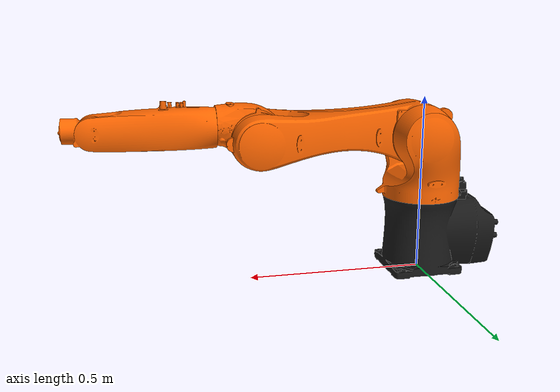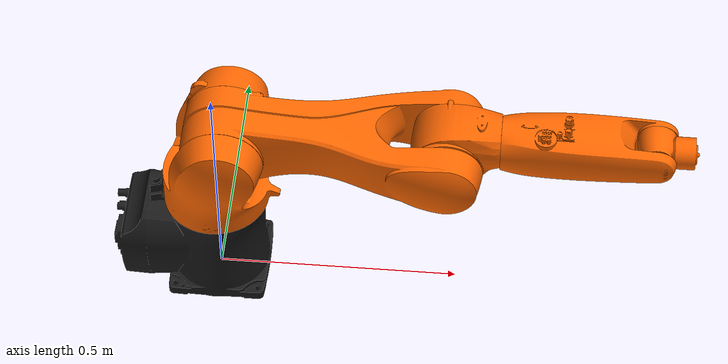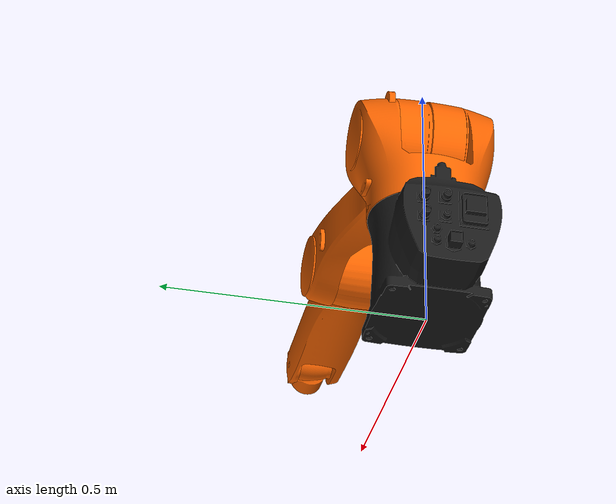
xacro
<?xml version="1.0" ?>

<robot name="kuka_kr6_r900" xmlns:xacro="http://ros.org/wiki/xacro">
	<xacro:include filename="$(find kuka_kr6_r900_description)/urdf/kuka_kr6_r900.urdf.xacro" />

	<link name="world"/>

	<xacro:kuka_kr6_r900 prefix="" parent="world">
		<origin xyz="0 0 0" rpy="0 0 0" />
	</xacro:kuka_kr6_r900>
</robot>

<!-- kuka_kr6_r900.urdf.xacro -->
<robot xmlns:xacro="http://ros.org/wiki/xacro">

	<xacro:include filename="$(find kuka_kr6_r900_description)/urdf/kuka_kr6_r900.gazebo.xacro" />
	<xacro:include filename="$(find kuka_kr6_r900_description)/urdf/kuka_kr6_r900.transmission.xacro" />

	<xacro:macro name="kuka_kr6_r900" params="prefix parent *origin">

		<joint name="${prefix}base_joint" type="fixed">
			<parent link="${parent}"/>
			<child link="${prefix}base_link"/>
			<insert_block name="origin" />
		</joint>

		<!-- BASE LINK -->
		<link name="${prefix}base_link">
		    <inertial>
		        <mass value="1.2" />
		        <origin xyz="0.0 0.0 0.0" />
		        <inertia  ixx="1.0" ixy="0.0"  ixz="0.0"  iyy="1.0"  iyz="0.0"  izz="1.0" />
		    </inertial>

		    <visual>
		        <origin xyz="0.0 0.0 0.0" rpy="0.0 0.0 0.0" />
		        <geometry>
		            <mesh filename="package://kuka_kr6_r900_description/meshes/visual/link_0.stl" scale="1.0 1.0 1.0"/>
		        </geometry>
		        <material name="black">
		            <color rgba="0.1 0.1 0.1 1.0"/>
		        </material>
		    </visual>

		    <collision>
		        <origin xyz="0.0 0.0 0.0" rpy="0.0 0.0 0.0" />
		        <geometry>
		            <mesh filename="package://kuka_kr6_r900_description/meshes/collision/link_0.stl" scale="1.0 1.0 1.0"/>
		        </geometry>
		    </collision>
		</link>

		<!-- LINK 1 -->
		<link name="${prefix}link_1">
		    <inertial>
		        <mass value="1.2" />
		        <origin xyz="0.0 0.0 0.0" />
		        <inertia  ixx="1.0" ixy="0.0"  ixz="0.0"  iyy="1.0"  iyz="0.0"  izz="1.0" />
		    </inertial>

		    <visual>
		        <origin xyz="0.0 0.0 0.0" rpy="0.0 0.0 0.0" />
		        <geometry>
		            <mesh filename="package://kuka_kr6_r900_description/meshes/visual/link_1.stl" scale="1.0 1.0 1.0"/>
		        </geometry>
		        <material name="orange">
		            <color rgba="1.0 0.4 0.0 1.0"/>
		        </material>
		    </visual>

		    <collision>
		        <origin xyz="0.0 0.0 0.0" rpy="0.0 0.0 0.0" />
		        <geometry>
		            <mesh filename="package://kuka_kr6_r900_description/meshes/collision/link_1.stl" scale="1.0 1.0 1.0"/>
		        </geometry>
		    </collision>
		</link>

		<!-- LINK 2 -->
		<link name="${prefix}link_2">
		    <inertial>
		        <mass value="1.2" />
		        <origin xyz="0.0 0.0 0.0" />
		        <inertia  ixx="1.0" ixy="0.0"  ixz="0.0"  iyy="1.0"  iyz="0.0"  izz="1.0" />
		    </inertial>

		    <visual>
		        <origin xyz="0.0 0.0 0.0" rpy="0.0 0.0 0.0" />
		        <geometry>
		            <mesh filename="package://kuka_kr6_r900_description/meshes/visual/link_2.stl" scale="1.0 1.0 1.0"/>
		        </geometry>
		        <material name="orange" />
		    </visual>

		    <collision>
		        <origin xyz="0.0 0.0 0.0" rpy="0.0 0.0 0.0" />
		        <geometry>
		            <mesh filename="package://kuka_kr6_r900_description/meshes/collision/link_2.stl" scale="1.0 1.0 1.0"/>
		        </geometry>
		    </collision>
		</link>

		<!-- LINK 3 -->
		<link name="${prefix}link_3">
		    <inertial>
		        <mass value="1.2" />
		        <origin xyz="0.0 0.0 0.0" />
		        <inertia  ixx="1.0" ixy="0.0"  ixz="0.0"  iyy="1.0"  iyz="0.0"  izz="1.0" />
		    </inertial>

		    <visual>
		        <origin xyz="0.0 0.0 0.0" rpy="0.0 0.0 0.0" />
		        <geometry>
		            <mesh filename="package://kuka_kr6_r900_description/meshes/visual/link_3.stl" scale="1.0 1.0 1.0"/>
		        </geometry>
		        <material name="orange" />
		    </visual>

		    <collision>
		        <origin xyz="0.0 0.0 0.0" rpy="0.0 0.0 0.0" />
		        <geometry>
		            <mesh filename="package://kuka_kr6_r900_description/meshes/collision/link_3.stl" scale="1.0 1.0 1.0"/>
		        </geometry>
		    </collision>
		</link>

		<!-- LINK 4 -->
		<link name="${prefix}link_4">
		    <inertial>
		        <mass value="1.2" />
		        <origin xyz="0.0 0.0 0.0" />
		        <inertia  ixx="1.0" ixy="0.0"  ixz="0.0"  iyy="1.0"  iyz="0.0"  izz="1.0" />
		    </inertial>

		    <visual>
		        <origin xyz="0.0 0.0 0.0" rpy="0.0 0.0 0.0" />
		        <geometry>
		            <mesh filename="package://kuka_kr6_r900_description/meshes/visual/link_4.stl" scale="1.0 1.0 1.0"/>
		        </geometry>
		        <material name="orange" />
		    </visual>

		    <collision>
		        <origin xyz="0.0 0.0 0.0" rpy="0.0 0.0 0.0" />
		        <geometry>
		            <mesh filename="package://kuka_kr6_r900_description/meshes/collision/link_4.stl" scale="1.0 1.0 1.0"/>
		        </geometry>
		    </collision>
		</link>

		<!-- LINK 5 -->
		<link name="${prefix}link_5">
		    <inertial>
		        <mass value="1.2" />
		        <origin xyz="0.0 0.0 0.0" />
		        <inertia  ixx="1.0" ixy="0.0"  ixz="0.0"  iyy="1.0"  iyz="0.0"  izz="1.0" />
		    </inertial>

		    <visual>
		        <origin xyz="0.0 0.0 0.0" rpy="0.0 0.0 0.0" />
		        <geometry>
		            <mesh filename="package://kuka_kr6_r900_description/meshes/visual/link_5.stl" scale="1.0 1.0 1.0"/>
		        </geometry>
		        <material name="orange" />
		    </visual>

		    <collision>
		        <origin xyz="0.0 0.0 0.0" rpy="0.0 0.0 0.0" />
		        <geometry>
		            <mesh filename="package://kuka_kr6_r900_description/meshes/collision/link_5.stl" scale="1.0 1.0 1.0"/>
		        </geometry>
		    </collision>
		</link>

		<!-- LINK 6 -->
		<link name="${prefix}link_6">
		    <inertial>
		        <mass value="1.2" />
		        <origin xyz="0.0 0.0 0.0" />
		        <inertia  ixx="1.0" ixy="0.0"  ixz="0.0"  iyy="1.0"  iyz="0.0"  izz="1.0" />
		    </inertial>

		    <visual>
		        <origin xyz="0.0 0.0 0.0" rpy="0.0 0.0 0.0" />
		        <geometry>
		            <mesh filename="package://kuka_kr6_r900_description/meshes/visual/link_6.stl" scale="1.0 1.0 1.0"/>
		        </geometry>
		        <material name="orange" />
		    </visual>

		    <collision>
		        <origin xyz="0.0 0.0 0.0" rpy="0.0 0.0 0.0" />
		        <geometry>
		            <mesh filename="package://kuka_kr6_r900_description/meshes/collision/link_6.stl" scale="1.0 1.0 1.0"/>
		        </geometry>
		    </collision>
		</link>

		<!-- TOOL -->
		<link name="${prefix}tool">
		    <inertial>
		        <mass value="0.00001" />
		        <origin xyz="0.0 0.0 0.0" />
		        <inertia  ixx="1.0" ixy="0.0"  ixz="0.0"  iyy="1.0"  iyz="0.0"  izz="1.0" />
		    </inertial>
		    <visual>
			<geometry>
			   <sphere radius="0.005"/>
			</geometry>
			<origin rpy="0 0 0" xyz="0 0 0"/>
		        <material name="orange">
		            <color rgba="1.0 0.4 0.0 1.0"/>
		        </material>
		    </visual>
		</link>

		<!-- JOINTS -->
		<joint name="${prefix}A1" type="revolute">
		    <origin xyz="0.0 0.0 0.217" rpy = "3.14159 0.0 0.0"/>
		    <parent link="${prefix}base_link"/>
		    <child link="${prefix}link_1"/>
		    <limit effort="10.0"
		           velocity="1.0"
		           lower="-2.96"
		           upper="2.96"/>
		    <axis xyz="0 0 1" />
		</joint>

		<joint name="${prefix}A2" type="revolute">
		    <origin xyz="0.025 0.0 -0.183" rpy = "1.570796 -1.570796 0.0"/>
		    <parent link="${prefix}link_1"/>
		    <child link="${prefix}link_2"/>
		    <limit effort="10.0"
		           velocity="1.0"
		           lower="-3.31444"
		           upper="0.785"/>
		    <axis xyz="0 0 1" />
		</joint>

		<joint name="${prefix}A3" type="revolute">
		    <origin xyz="0.0 -0.455 0.0" rpy = "0.0 0.0 -1.570796"/>
		    <parent link="${prefix}link_2"/>
		    <child link="${prefix}link_3"/>
		    <limit effort="10.0"
		           velocity="1.0"
		           lower="-2.09333"
		           upper="2.72133"/>
		    <axis xyz="0 0 1" />
		</joint>

		<joint name="${prefix}A4" type="revolute">
		    <origin xyz="0.0 -0.035 0.0" rpy = "1.570796 0.0 -1.570796"/>
		    <parent link="${prefix}link_3"/>
		    <child link="${prefix}link_4"/>
		    <limit effort="10.0"
		           velocity="1.0"
		           lower="-2.09333"
		           upper="2.72133"/>
		    <axis xyz="0 0 1" />
		</joint>

		<joint name="${prefix}A5" type="revolute">
		    <origin xyz="0.0 0.0 -0.42" rpy = "-1.570796 0.0 0.0"/>
		    <parent link="${prefix}link_4"/>
		    <child link="${prefix}link_5"/>
		    <limit effort="10.0"
		           velocity="1.0"
		           lower="-2.09333"
		           upper="2.09333"/>
		    <axis xyz="0 0 1" />
		</joint>

		<joint name="${prefix}A6" type="revolute">
		    <origin xyz="0.0 0.0665 0.0" rpy = "1.570796 0.0 0.0"/>
		    <parent link="${prefix}link_5"/>
		    <child link="${prefix}link_6"/>
		    <limit effort="10.0"
		           velocity="1.0"
		           lower="-3.1415926"
		           upper="3.1415"/>
		    <axis xyz="0 0 1" />
		</joint>

		<joint name="${prefix}joint_tool" type="fixed">
		    <origin xyz="0.0 0 -0.014" rpy = "0.0 3.14159 -1.570796"/>
		    <parent link="${prefix}link_6"/>
		    <child link="${prefix}tool"/>
		</joint>

		<!-- extensions -->
		<xacro:kuka_kr6_r900_gazebo prefix="${prefix}" />
		<xacro:kuka_kr6_r900_transmission prefix="${prefix}" />

	</xacro:macro>
</robot>
